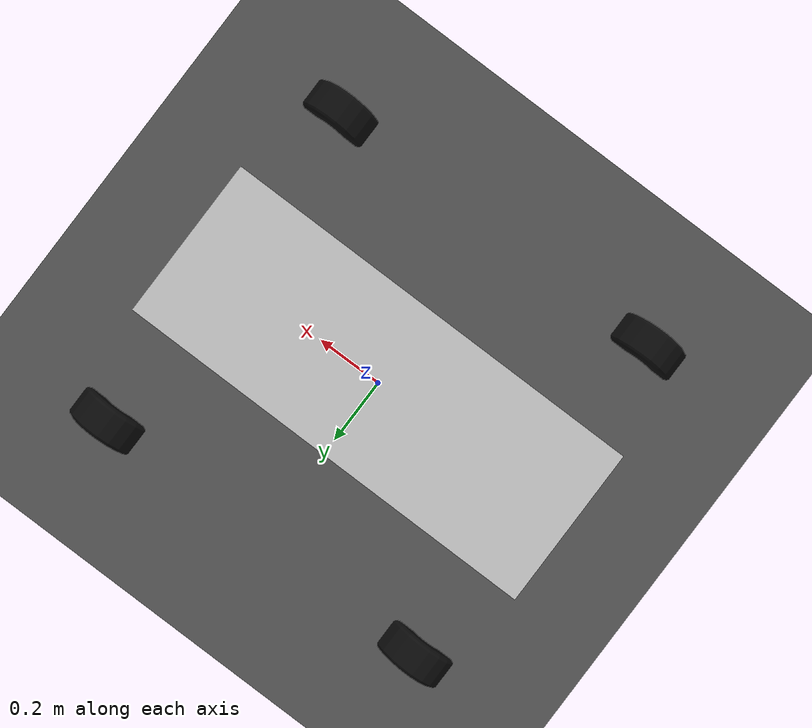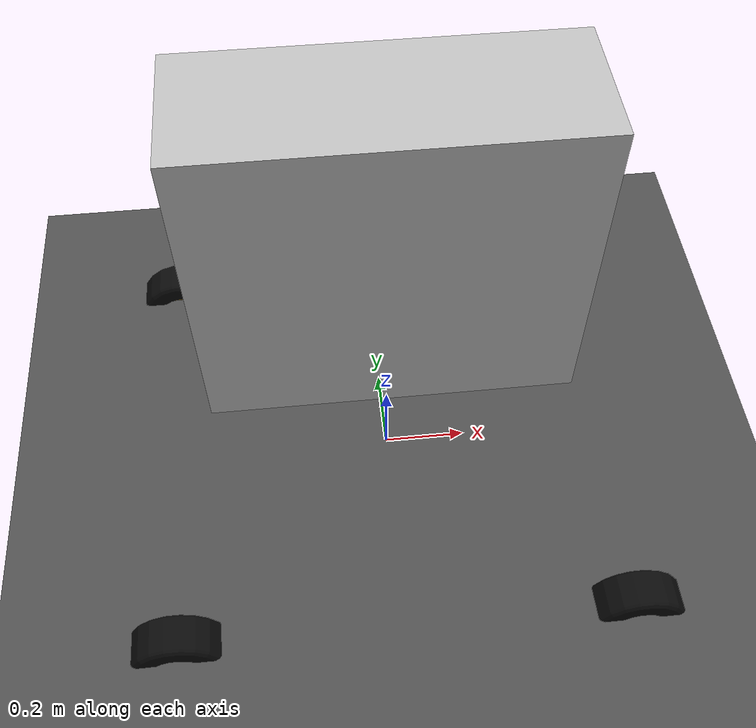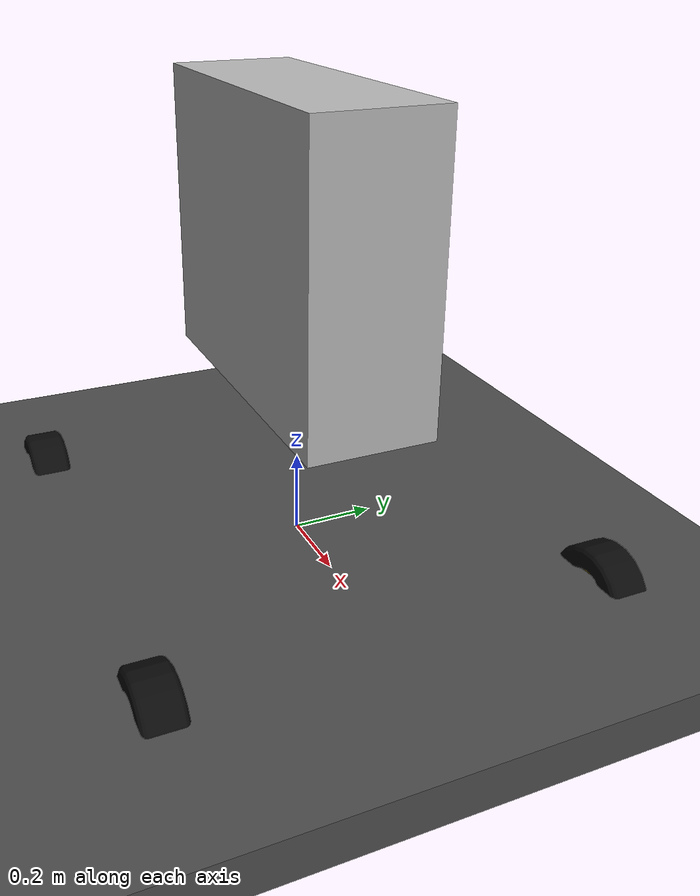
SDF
<?xml version="1.0" ?>
<sdf version="1.4">
  <world name="default">

    <include>
      <uri>model://asphalto_plane</uri>
      <pose>0 0 0 0 0 0</pose>
    </include>

     <include>
      <uri>model://sun</uri>
    </include>

      <include>
        <uri>model://pioneer3at</uri>
        <name>pioneer3at</name>
        <pose>0.0 0.0 0.0 0 0 0</pose>
      </include>

  </world>

</sdf>

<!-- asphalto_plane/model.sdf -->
<sdf version="1.6">
  <model name="asphalt_plane">
    <link name="link">
      <pose frame="">0 0 0 0 -0 0</pose>
      <inertial>
        <mass>5.4521</mass>
        <pose frame="">0 0 0 0 -0 0</pose>
        <inertia>
          <ixx>7.81026</ixx>
          <ixy>0</ixy>
          <ixz>0</ixz>
          <iyy>46.1744</iyy>
          <iyz>0</iyz>
          <izz>48.5326</izz>
        </inertia>
      </inertial>
      <self_collide>0</self_collide>
      <kinematic>0</kinematic>
      <visual name="visual">
        <cast_shadows>0</cast_shadows>
        <geometry>
          <box>
            <size>80 80 0.1</size>
          </box>
        </geometry>
        <material>
          <script>
            <uri>model://asphalto_plane/materials/scripts</uri>
            <uri>model://asphalto_plane/materials/textures</uri>
            <name>vrc/asphalt</name>
          </script>
          <ambient>0.5 0.5 0.5 1</ambient>
          <diffuse>0.5 0.5 0.5 1</diffuse>
          <specular>0.2 0.2 0.2 1</specular>
          <emissive>0 0 0 1</emissive>
          <shader type="vertex">
            <normal_map>__default__</normal_map>
          </shader>
        </material>
        <pose frame="">0 0 0 0 -0 0</pose>
        <transparency>0</transparency>
      </visual>
      <collision name="collision">
        <laser_retro>0</laser_retro>
        <max_contacts>100</max_contacts>
        <pose frame="">0 0 0 0 -0 0</pose>
        <geometry>
          <box>
            <size>80 80 0.1</size>
          </box>
        </geometry>
        <surface>
          <friction>
            <ode>
              <mu>1</mu>
              <mu2>1</mu2>
              <fdir1>0 0 0</fdir1>
              <slip1>0</slip1>
              <slip2>0</slip2>
            </ode>
            <torsional>
              <coefficient>1</coefficient>
              <patch_radius>0</patch_radius>
              <surface_radius>0</surface_radius>
              <use_patch_radius>1</use_patch_radius>
              <ode>
                <slip>0</slip>
              </ode>
            </torsional>
          </friction>
          <bounce>
            <restitution_coefficient>0</restitution_coefficient>
            <threshold>1e+06</threshold>
          </bounce>
          <contact>
            <collide_without_contact>0</collide_without_contact>
            <collide_without_contact_bitmask>1</collide_without_contact_bitmask>
            <collide_bitmask>1</collide_bitmask>
            <ode>
              <soft_cfm>0</soft_cfm>
              <soft_erp>0.2</soft_erp>
              <kp>1e+13</kp>
              <kd>1</kd>
              <max_vel>0.00</max_vel>
              <min_depth>0.000</min_depth>
            </ode>
            <bullet>
              <split_impulse>1</split_impulse>
              <split_impulse_penetration_threshold>-0.01</split_impulse_penetration_threshold>
              <soft_cfm>0</soft_cfm>
              <soft_erp>0.2</soft_erp>
              <kp>1e+13</kp>
              <kd>1</kd>
            </bullet>
          </contact>
        </surface>
      </collision>
    </link>
    <static>1</static>
    <allow_auto_disable>1</allow_auto_disable>
  </model>
</sdf>

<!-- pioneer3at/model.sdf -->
<sdf version="1.6">
  <model name="pioneer3at">
    <link name="chassis">
      <pose frame="">0 0 0.75 0 0 0</pose>
      <inertial>
        <mass>200</mass>
        <inertia>
          <ixx>53.77</ixx>
          <ixy>0.0</ixy>
          <ixz>0.0</ixz>
          <iyy>53.77</iyy>
          <iyz>0.0</iyz>
          <izz>37.45</izz>
        </inertia>
        <pose frame="">0 0 -0.725 0 0 0</pose>
      </inertial>
      <self_collide>0</self_collide>
      <kinematic>0</kinematic>
      <gravity>1</gravity>
      <visual name="visual">
        <geometry>
          <box>
            <size>0.8 0.3 0.7</size>
          </box>
          <mesh>
            <uri>model://pioneer3at/meshes/chassis.dae</uri>
            <scale>1 1 1</scale>
          </mesh>
        </geometry>
        <pose frame="">0 0 0 0 -0 0</pose>
        <cast_shadows>0</cast_shadows>
        <transparency>0</transparency>
        <material>
          <shader type="vertex">
            <normal_map>__default__</normal_map>
          </shader>
        </material>
      </visual>
    </link>
    <link name="left_front_wheel">
      <pose frame="">0.53 0.53 0 1.5707 -0 0</pose>
      <self_collide>0</self_collide>
      <kinematic>0</kinematic>
      <visual name="visual">
        <geometry>
          <mesh>
            <uri>model://pioneer3at/meshes/wheel.dae</uri>
            <scale>1 1 1</scale>
          </mesh>
        </geometry>
        <pose frame="">0 0 0 0 -0 0</pose>
        <cast_shadows>1</cast_shadows>
        <transparency>0</transparency>
        <material>
          <shader type="vertex">
            <normal_map>__default__</normal_map>
          </shader>
        </material>
      </visual>
      <collision name="collision">
        <laser_retro>0</laser_retro>
        <max_contacts>100</max_contacts>
        <pose frame="">0 0 0 0 -0 0</pose>
        <geometry>
          <cylinder>
            <radius>0.11</radius>
            <length>0.075</length>
          </cylinder>
        </geometry>
        <surface>
          <friction>
            <ode>
              <mu>1</mu>
              <mu2>1</mu2>
              <fdir1>0 0 0</fdir1>
              <slip1>0</slip1>
              <slip2>0</slip2>
            </ode>
            <torsional>
              <coefficient>1</coefficient>
              <patch_radius>0</patch_radius>
              <surface_radius>0</surface_radius>
              <use_patch_radius>1</use_patch_radius>
              <ode>
                <slip>0</slip>
              </ode>
            </torsional>
          </friction>
          <bounce>
            <restitution_coefficient>0</restitution_coefficient>
            <threshold>1e+06</threshold>
          </bounce>
          <contact>
            <collide_without_contact>0</collide_without_contact>
            <collide_without_contact_bitmask>1</collide_without_contact_bitmask>
            <collide_bitmask>1</collide_bitmask>
            <ode>
              <soft_cfm>0</soft_cfm>
              <soft_erp>0.2</soft_erp>
              <kp>1e+13</kp>
              <kd>1</kd>
              <max_vel>0.01</max_vel>
              <min_depth>0</min_depth>
            </ode>
            <bullet>
              <split_impulse>1</split_impulse>
              <split_impulse_penetration_threshold>-0.01</split_impulse_penetration_threshold>
              <soft_cfm>0</soft_cfm>
              <soft_erp>0.2</soft_erp>
              <kp>1e+13</kp>
              <kd>1</kd>
            </bullet>
          </contact>
        </surface>
      </collision>
    </link>
    <link name="left_rear_wheel">
      <pose frame="">-0.53 0.53 0 1.5707 -0 0</pose>
      <self_collide>0</self_collide>
      <kinematic>0</kinematic>
      <visual name="visual">
        <geometry>
          <mesh>
            <uri>model://pioneer3at/meshes/wheel.dae</uri>
            <scale>1 1 1</scale>
          </mesh>
        </geometry>
        <pose frame="">0 0 0 0 -0 0</pose>
        <cast_shadows>1</cast_shadows>
        <transparency>0</transparency>
        <material>
          <shader type="vertex">
            <normal_map>__default__</normal_map>
          </shader>
        </material>
      </visual>
      <collision name="collision">
        <laser_retro>0</laser_retro>
        <max_contacts>100</max_contacts>
        <pose frame="">0 0 0 0 -0 0</pose>
        <geometry>
          <cylinder>
            <radius>0.11</radius>
            <length>0.075</length>
          </cylinder>
        </geometry>
        <surface>
          <friction>
            <ode>
              <mu>1</mu>
              <mu2>1</mu2>
              <fdir1>0 0 0</fdir1>
              <slip1>0</slip1>
              <slip2>0</slip2>
            </ode>
            <torsional>
              <coefficient>1</coefficient>
              <patch_radius>0</patch_radius>
              <surface_radius>0</surface_radius>
              <use_patch_radius>1</use_patch_radius>
              <ode>
                <slip>0</slip>
              </ode>
            </torsional>
          </friction>
          <bounce>
            <restitution_coefficient>0</restitution_coefficient>
            <threshold>1e+06</threshold>
          </bounce>
          <contact>
            <collide_without_contact>0</collide_without_contact>
            <collide_without_contact_bitmask>1</collide_without_contact_bitmask>
            <collide_bitmask>1</collide_bitmask>
            <ode>
              <soft_cfm>0</soft_cfm>
              <soft_erp>0.2</soft_erp>
              <kp>1e+13</kp>
              <kd>1</kd>
              <max_vel>0.01</max_vel>
              <min_depth>0</min_depth>
            </ode>
            <bullet>
              <split_impulse>1</split_impulse>
              <split_impulse_penetration_threshold>-0.01</split_impulse_penetration_threshold>
              <soft_cfm>0</soft_cfm>
              <soft_erp>0.2</soft_erp>
              <kp>1e+13</kp>
              <kd>1</kd>
            </bullet>
          </contact>
        </surface>
      </collision>
    </link>
    <link name="right_front_wheel">
      <pose frame="">0.53 -0.53 0 1.5707 -0 0</pose>
      <self_collide>0</self_collide>
      <kinematic>0</kinematic>
      <visual name="visual">
        <geometry>
          <mesh>
            <uri>model://pioneer3at/meshes/wheel.dae</uri>
            <scale>1 1 1</scale>
          </mesh>
        </geometry>
        <pose frame="">0 0 0 0 -0 0</pose>
        <cast_shadows>1</cast_shadows>
        <transparency>0</transparency>
        <material>
          <shader type="vertex">
            <normal_map>__default__</normal_map>
          </shader>
        </material>
      </visual>
      <collision name="collision">
        <laser_retro>0</laser_retro>
        <max_contacts>100</max_contacts>
        <pose frame="">0 0 0 0 -0 0</pose>
        <geometry>
          <cylinder>
            <radius>0.11</radius>
            <length>0.075</length>
          </cylinder>
        </geometry>
        <surface>
          <friction>
            <ode>
              <mu>1</mu>
              <mu2>1</mu2>
              <fdir1>0 0 0</fdir1>
              <slip1>0</slip1>
              <slip2>0</slip2>
            </ode>
            <torsional>
              <coefficient>1</coefficient>
              <patch_radius>0</patch_radius>
              <surface_radius>0</surface_radius>
              <use_patch_radius>1</use_patch_radius>
              <ode>
                <slip>0</slip>
              </ode>
            </torsional>
          </friction>
          <bounce>
            <restitution_coefficient>0</restitution_coefficient>
            <threshold>1e+06</threshold>
          </bounce>
          <contact>
            <collide_without_contact>0</collide_without_contact>
            <collide_without_contact_bitmask>1</collide_without_contact_bitmask>
            <collide_bitmask>1</collide_bitmask>
            <ode>
              <soft_cfm>0</soft_cfm>
              <soft_erp>0.2</soft_erp>
              <kp>1e+13</kp>
              <kd>1</kd>
              <max_vel>0.01</max_vel>
              <min_depth>0</min_depth>
            </ode>
            <bullet>
              <split_impulse>1</split_impulse>
              <split_impulse_penetration_threshold>-0.01</split_impulse_penetration_threshold>
              <soft_cfm>0</soft_cfm>
              <soft_erp>0.2</soft_erp>
              <kp>1e+13</kp>
              <kd>1</kd>
            </bullet>
          </contact>
        </surface>
      </collision>
    </link>
    <link name="right_rear_wheel">
      <pose frame="">-0.53 -0.53 0 1.5707 -0 0</pose>
      <self_collide>0</self_collide>
      <kinematic>0</kinematic>
      <visual name="visual">
        <geometry>
          <mesh>
            <uri>model://pioneer3at/meshes/wheel.dae</uri>
            <scale>1 1 1</scale>
          </mesh>
        </geometry>
        <pose frame="">0 0 0 0 -0 0</pose>
        <cast_shadows>1</cast_shadows>
        <transparency>0</transparency>
        <material>
          <shader type="vertex">
            <normal_map>__default__</normal_map>
          </shader>
        </material>
      </visual>
      <collision name="collision">
        <laser_retro>0</laser_retro>
        <max_contacts>100</max_contacts>
        <pose frame="">0 0 0 0 -0 0</pose>
        <geometry>
          <cylinder>
            <radius>0.11</radius>
            <length>0.075</length>
          </cylinder>
        </geometry>
        <surface>
          <friction>
            <ode>
              <mu>1</mu>
              <mu2>1</mu2>
              <fdir1>0 0 0</fdir1>
              <slip1>0</slip1>
              <slip2>0</slip2>
            </ode>
            <torsional>
              <coefficient>1</coefficient>
              <patch_radius>0</patch_radius>
              <surface_radius>0</surface_radius>
              <use_patch_radius>1</use_patch_radius>
              <ode>
                <slip>0</slip>
              </ode>
            </torsional>
          </friction>
          <bounce>
            <restitution_coefficient>0</restitution_coefficient>
            <threshold>1e+06</threshold>
          </bounce>
          <contact>
            <collide_without_contact>0</collide_without_contact>
            <collide_without_contact_bitmask>1</collide_without_contact_bitmask>
            <collide_bitmask>1</collide_bitmask>
            <ode>
              <soft_cfm>0</soft_cfm>
              <soft_erp>0.2</soft_erp>
              <kp>1e+13</kp>
              <kd>1</kd>
              <max_vel>0.01</max_vel>
              <min_depth>0</min_depth>
            </ode>
            <bullet>
              <split_impulse>1</split_impulse>
              <split_impulse_penetration_threshold>-0.01</split_impulse_penetration_threshold>
              <soft_cfm>0</soft_cfm>
              <soft_erp>0.2</soft_erp>
              <kp>1e+13</kp>
              <kd>1</kd>
            </bullet>
          </contact>
        </surface>
      </collision>
    </link>
    <joint name="left_front" type="revolute">
      <parent>chassis</parent>
      <child>left_front_wheel</child>
      <pose frame="">0 0 0 0 -0 0</pose>
      <axis>
        <xyz>0 1 0</xyz>
        <use_parent_model_frame>1</use_parent_model_frame>
        <limit>
          <lower>-1e+16</lower>
          <upper>1e+16</upper>
          <effort>-1</effort>
          <velocity>-1</velocity>
        </limit>
        <dynamics>
          <spring_reference>0</spring_reference>
          <spring_stiffness>0</spring_stiffness>
          <damping>0</damping>
          <friction>1</friction>
        </dynamics>
      </axis>
      <physics>
        <ode>
          <limit>
            <cfm>0</cfm>
            <erp>0.2</erp>
          </limit>
          <suspension>
            <cfm>0</cfm>
            <erp>0.2</erp>
          </suspension>
        </ode>
      </physics>
    </joint>
    <joint name="left_rear" type="revolute">
      <parent>chassis</parent>
      <child>left_rear_wheel</child>
      <pose frame="">0 0 0 0 -0 0</pose>
      <axis>
        <xyz>0 1 0</xyz>
        <use_parent_model_frame>1</use_parent_model_frame>
        <limit>
          <lower>-1e+16</lower>
          <upper>1e+16</upper>
          <effort>-1</effort>
          <velocity>-1</velocity>
        </limit>
        <dynamics>
          <spring_reference>0</spring_reference>
          <spring_stiffness>0</spring_stiffness>
          <damping>0</damping>
          <friction>1</friction>
        </dynamics>
      </axis>
      <physics>
        <ode>
          <limit>
            <cfm>0</cfm>
            <erp>0.2</erp>
          </limit>
          <suspension>
            <cfm>0</cfm>
            <erp>0.2</erp>
          </suspension>
        </ode>
      </physics>
    </joint>
    <joint name="right_front" type="revolute">
      <parent>chassis</parent>
      <child>right_front_wheel</child>
      <pose frame="">0 0 0 0 -0 0</pose>
      <axis>
        <xyz>0 1 0</xyz>
        <use_parent_model_frame>1</use_parent_model_frame>
        <limit>
          <lower>-1e+16</lower>
          <upper>1e+16</upper>
          <effort>-1</effort>
          <velocity>-1</velocity>
        </limit>
        <dynamics>
          <spring_reference>0</spring_reference>
          <spring_stiffness>0</spring_stiffness>
          <damping>0</damping>
          <friction>1</friction>
        </dynamics>
      </axis>
      <physics>
        <ode>
          <limit>
            <cfm>0</cfm>
            <erp>0.2</erp>
          </limit>
          <suspension>
            <cfm>0</cfm>
            <erp>0.2</erp>
          </suspension>
        </ode>
      </physics>
    </joint>
    <joint name="right_rear" type="revolute">
      <parent>chassis</parent>
      <child>right_rear_wheel</child>
      <pose frame="">0 0 0 0 -0 0</pose>
      <axis>
        <xyz>0 1 0</xyz>
        <use_parent_model_frame>1</use_parent_model_frame>
        <limit>
          <lower>-1e+16</lower>
          <upper>1e+16</upper>
          <effort>-1</effort>
          <velocity>-1</velocity>
        </limit>
        <dynamics>
          <spring_reference>0</spring_reference>
          <spring_stiffness>0</spring_stiffness>
          <damping>0</damping>
          <friction>1</friction>
        </dynamics>
      </axis>
      <physics>
        <ode>
          <limit>
            <cfm>0</cfm>
            <erp>0.2</erp>
          </limit>
          <suspension>
            <cfm>0</cfm>
            <erp>0.2</erp>
          </suspension>
        </ode>
      </physics>
    </joint>
    <static>0</static>
    <allow_auto_disable>1</allow_auto_disable>
    <plugin filename="libcustom_skid_steer_drive.so" name="custom_skid_steer_drive">
      <updateRate>100.0</updateRate>
      <robotNamespace>forklift</robotNamespace>
      <leftFrontJoint>left_front</leftFrontJoint>
      <rightFrontJoint>right_front</rightFrontJoint>
      <leftRearJoint>left_rear</leftRearJoint>
      <rightRearJoint>right_rear</rightRearJoint>
      <wheelSeparation>1.06</wheelSeparation>
      <wheelDiameter>0.22</wheelDiameter>
      <robotBaseFrame>chassis</robotBaseFrame>
      <torque>10000</torque>
      <commandTopic>cmd_vel</commandTopic>
      <odometryTopic>odom</odometryTopic>
      <odometryFrame>odom</odometryFrame>
      <broadcastTF>1</broadcastTF>
    </plugin>
  </model>
</sdf>
